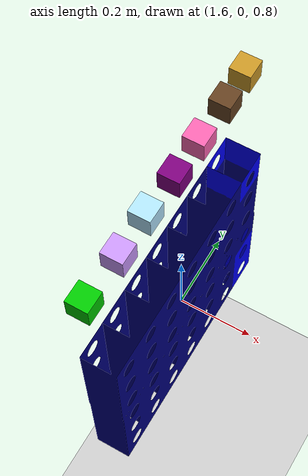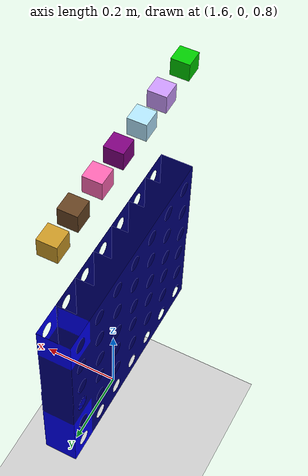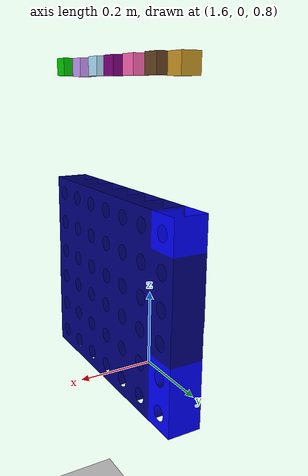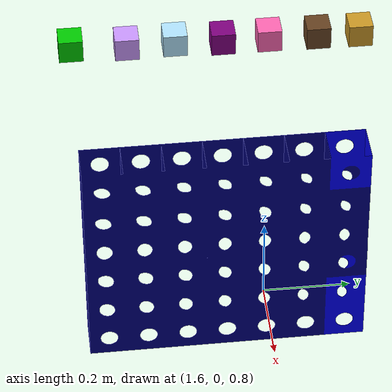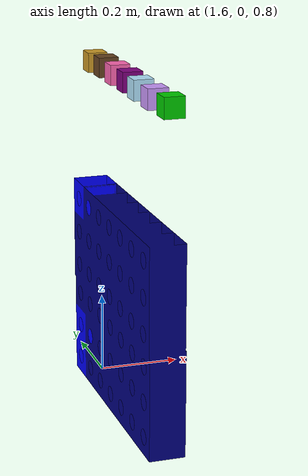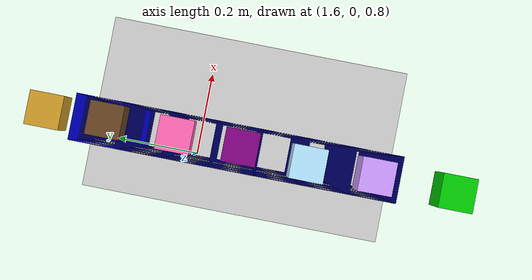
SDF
<sdf version="1.6">
 <world name="default">
  <light name="sun" type="directional">
   <pose>0 0 10 0 -0 0</pose>
   <diffuse>0.8 0.8 0.8 1</diffuse>
   <specular>0.2 0.2 0.2 1</specular>
   <attenuation>
    <range>1000</range>
    <constant>0.9</constant>
    <linear>0.01</linear>
    <quadratic>0.001</quadratic>
   </attenuation>
   <direction>-0.5 0.1 -0.9</direction>
  </light>
  <model name="ground_plane">
   <static>1</static>
   <link name="link">
    <collision name="collision">
     <geometry><plane><normal>0 0 1</normal><size>100 100</size></plane></geometry>
     <surface><friction><ode><mu>100</mu><mu2>50</mu2></ode></friction></surface>
    </collision>
    <visual name="visual">
     <cast_shadows>0</cast_shadows>
     <geometry><plane><normal>0 0 1</normal><size>100 100</size></plane></geometry>
     <material>
      <script><uri>file://media/materials/scripts/gazebo.material</uri><name>Gazebo/Grey</name></script>
     </material>
    </visual>
    <kinematic>1</kinematic>
   </link>
  </model>
  <gravity>0 0 -9.8</gravity>
  <magnetic_field>6e-06 2.3e-05 -4.2e-05</magnetic_field>
  <atmosphere type="adiabatic"/>
  <physics name="default_physics" default="0" type="ode">
   <max_step_size>0.001</max_step_size>
   <real_time_factor>1</real_time_factor>
   <real_time_update_rate>1000</real_time_update_rate>
  </physics>
  <scene><ambient>0.4 0.4 0.4 1</ambient><background>0.7 0.7 0.7 1</background><shadows>1</shadows></scene>
  <spherical_coordinates>
   <surface_model>EARTH_WGS84</surface_model>
   <latitude_deg>0</latitude_deg>
   <longitude_deg>0</longitude_deg>
   <elevation>0</elevation>
   <heading_deg>0</heading_deg>
  </spherical_coordinates>
  <light name="user_point_light_0" type="point">
   <pose>0.590599 -1.05064 1 0 -0 0</pose>
   <diffuse>0.5 0.5 0.5 1</diffuse>
   <specular>0.1 0.1 0.1 1</specular>
   <attenuation>
    <range>20</range>
    <constant>0.5</constant>
    <linear>0.01</linear>
    <quadratic>0.001</quadratic>
   </attenuation>
   <cast_shadows>0</cast_shadows>
   <direction>0 0 -1</direction>
  </light>
  <model name="Board">
   <static>1</static>
   <link name="grille_link">
    <visual name="visual"><geometry><mesh><uri>model://AAAA/meshes/cube1.dae</uri></mesh></geometry></visual>
    <collision name="collision">
     <geometry><mesh><uri>model://AAAA/meshes/cube1.dae</uri></mesh></geometry>
     <surface>
      <friction><ode><mu>10</mu><mu2>10</mu2></ode></friction>
      <bounce><restitution_coefficient>0</restitution_coefficient><threshold>1e+06</threshold></bounce>
      <contact><ode><kp>100000</kp><kd>1</kd><min_depth>0.001</min_depth><max_vel>0.01</max_vel></ode></contact>
     </surface>
    </collision>
   </link>
   <pose>1.63755 -0.043053 0.76869 0 -0 0</pose>
  </model>
  <model name="jeton_violet">
   <static>1</static>
   <link name="jeton">
    <inertial><mass>0.01</mass></inertial>
    <collision name="collision"><geometry><box><size>0.05 0.05 0.05</size></box></geometry></collision>
    <visual name="visual">
     <geometry><box><size>0.05 0.05 0.05</size></box></geometry>
     <material><ambient>0.5 0 0.5 1</ambient><diffuse>0.5 0 0.5 1</diffuse></material>
    </visual>
   </link>
   <pose>1.64234 -0.100274 1.57503 0 -0 0</pose>
  </model>
  <model name="Brown">
   <static>1</static>
   <link name="jeton">
    <inertial><mass>0.01</mass></inertial>
    <collision name="collision"><geometry><box><size>0.05 0.05 0.05</size></box></geometry></collision>
    <visual name="visual">
     <geometry><box><size>0.05 0.05 0.05</size></box></geometry>
     <material><ambient>0.4 0.26 0.13 1</ambient><diffuse>0.4 0.26 0.13 1</diffuse></material>
    </visual>
   </link>
   <pose>1.64294 0.097959 1.57375 0 -0 0</pose>
  </model>
  <model name="Green">
   <static>1</static>
   <link name="jeton">
    <inertial><mass>0.01</mass></inertial>
    <collision name="collision"><geometry><box><size>0.05 0.05 0.05</size></box></geometry></collision>
    <visual name="visual">
     <geometry><box><size>0.05 0.05 0.05</size></box></geometry>
     <material><ambient>0 0.8 0 1</ambient><diffuse>0 0.8 0 1</diffuse></material>
    </visual>
   </link>
   <pose>1.63719 -0.414994 1.57967 0 -0 0</pose>
  </model>
  <model name="Baby Blue">
   <static>1</static>
   <link name="jeton">
    <inertial><mass>0.01</mass></inertial>
    <collision name="collision"><geometry><box><size>0.05 0.05 0.05</size></box></geometry></collision>
    <visual name="visual">
     <geometry><box><size>0.05 0.05 0.05</size></box></geometry>
     <material><ambient>0.7 0.9 1 1</ambient><diffuse>0.7 0.9 1 1</diffuse></material>
    </visual>
   </link>
   <pose>1.63742 -0.19968 1.5761 0 -0 0</pose>
  </model>
  <model name="Mustard">
   <static>1</static>
   <link name="jeton">
    <inertial><mass>0.01</mass></inertial>
    <collision name="collision"><geometry><box><size>0.05 0.05 0.05</size></box></geometry></collision>
    <visual name="visual">
     <geometry><box><size>0.05 0.05 0.05</size></box></geometry>
     <material><ambient>0.8 0.6 0.15 1</ambient><diffuse>0.8 0.6 0.15 1</diffuse></material>
    </visual>
   </link>
   <pose>1.64059 0.186299 1.57063 0 -0 0</pose>
  </model>
  <model name="Pink">
   <static>1</static>
   <link name="jeton">
    <inertial><mass>0.01</mass></inertial>
    <collision name="collision"><geometry><box><size>0.05 0.05 0.05</size></box></geometry></collision>
    <visual name="visual">
     <geometry><box><size>0.05 0.05 0.05</size></box></geometry>
     <material><ambient>1 0.4 0.7 1</ambient><diffuse>1 0.4 0.7 1</diffuse></material>
    </visual>
   </link>
   <pose>1.64149 -0.003997 1.57435 0 -0 0</pose>
  </model>
  <model name="Orange_0">
   <static>1</static>
   <link name="jeton">
    <inertial><mass>0.01</mass></inertial>
    <collision name="collision"><geometry><box><size>0.05 0.05 0.05</size></box></geometry></collision>
    <visual name="visual">
     <geometry><box><size>0.05 0.05 0.05</size></box></geometry>
     <material><ambient>0.7 0.5 0.9 1</ambient><diffuse>0.8 0.6 1 1</diffuse></material>
    </visual>
   </link>
   <pose>1.63846 -0.299435 1.57526 0 -0 0</pose>
  </model>
 </world>
</sdf>
